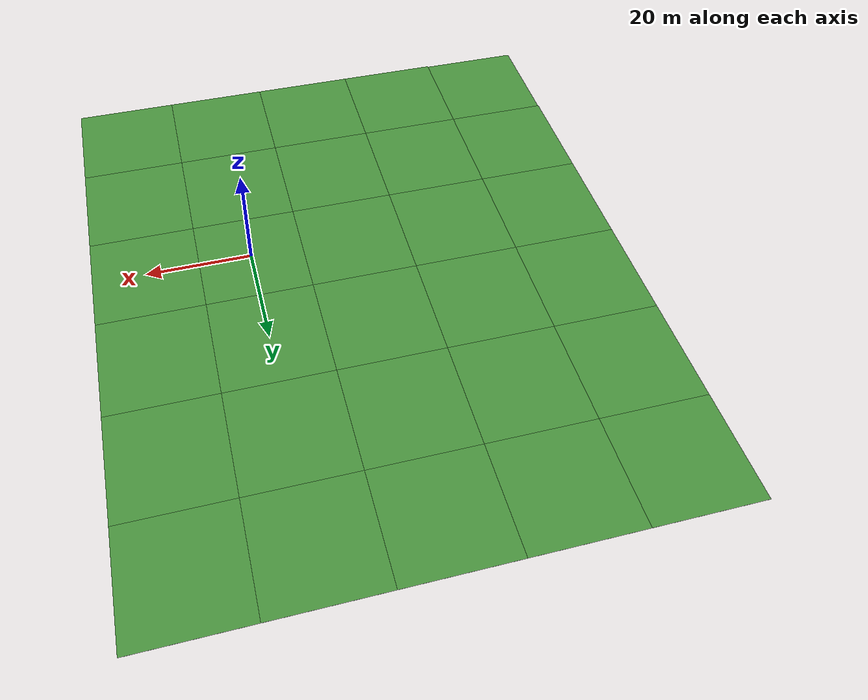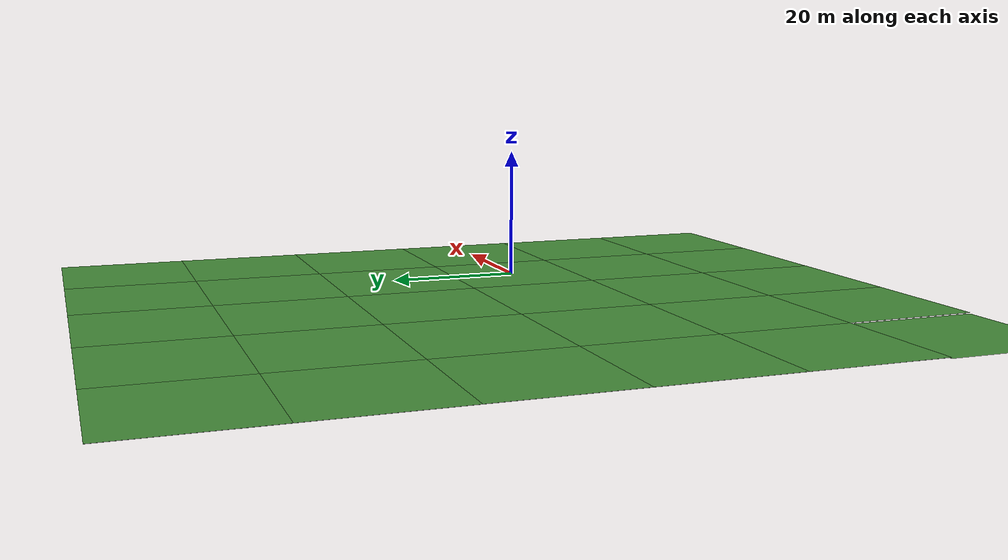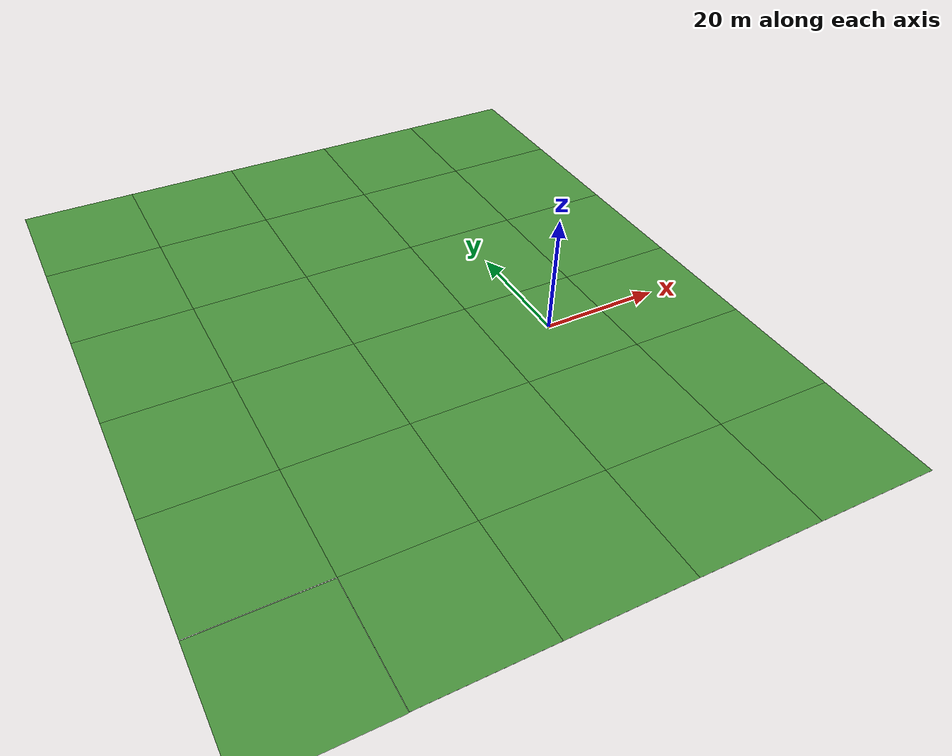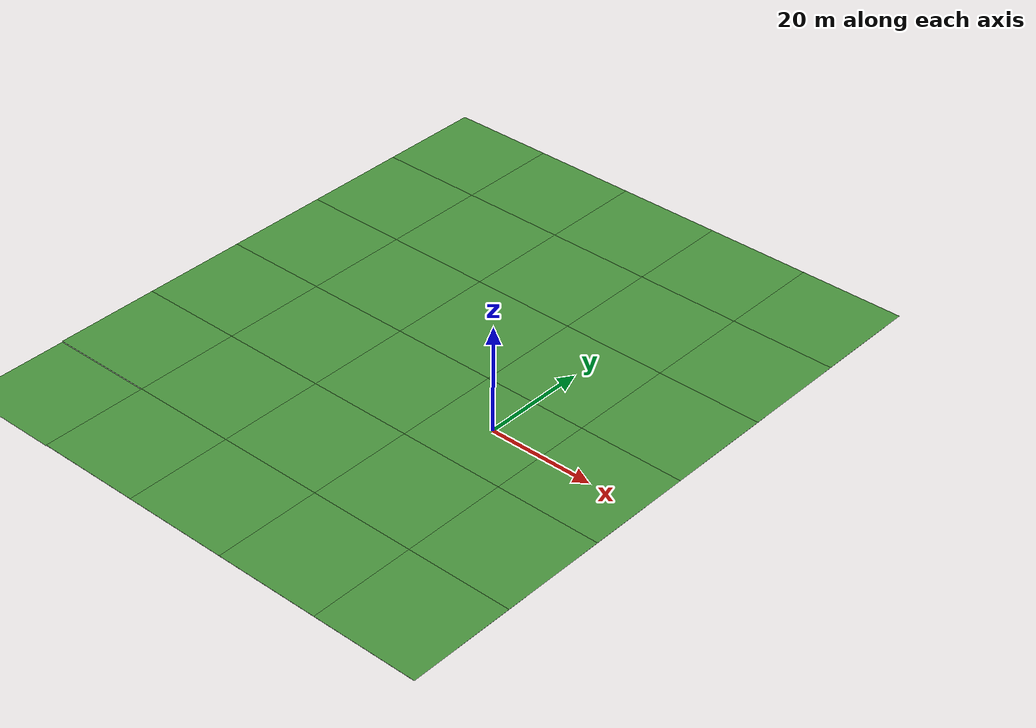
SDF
<?xml version="1.0"?>

<sdf version="1.5">
<model name="grass_plane">
  <static>true</static>
    <link name="link">
      <collision name="collision">
        <geometry>
          <plane>
            <normal>0 0 1</normal>
            <size>200 200</size>
          </plane>
        </geometry>
        <surface>
          <friction>
            <ode>
              <mu>100</mu>
              <mu2>50</mu2>
            </ode>
          </friction>
        </surface>
      </collision>

      <visual name="visual_(-3, -2)">
        <pose>-60 -40 0 0 0 0</pose>
        <cast_shadows>false</cast_shadows>
        <geometry>
          <plane>
            <normal>0 0 1</normal>
            <size>20 20</size>
          </plane>
        </geometry>
        <material>
          <script>
            <uri>model://grass_plane/materials/scripts/</uri>
            <uri>model://grass_plane/materials/textures/</uri>
            <name>grass_dry</name>
          </script>
        </material>
      </visual>

      <visual name="visual_(-3, -1)">
        <pose>-60 -20 0 0 0 0</pose>
        <cast_shadows>false</cast_shadows>
        <geometry>
          <plane>
            <normal>0 0 1</normal>
            <size>20 20</size>
          </plane>
        </geometry>
        <material>
          <script>
            <uri>model://grass_plane/materials/scripts/</uri>
            <uri>model://grass_plane/materials/textures/</uri>
            <name>grass_dry</name>
          </script>
        </material>
      </visual>

      <visual name="visual_(-3, 0)">
        <pose>-60 0 0 0 0 0</pose>
        <cast_shadows>false</cast_shadows>
        <geometry>
          <plane>
            <normal>0 0 1</normal>
            <size>20 20</size>
          </plane>
        </geometry>
        <material>
          <script>
            <uri>model://grass_plane/materials/scripts/</uri>
            <uri>model://grass_plane/materials/textures/</uri>
            <name>grass_dry</name>
          </script>
        </material>
      </visual>

      <visual name="visual_(-3, 1)">
        <pose>-60 20 0 0 0 0</pose>
        <cast_shadows>false</cast_shadows>
        <geometry>
          <plane>
            <normal>0 0 1</normal>
            <size>20 20</size>
          </plane>
        </geometry>
        <material>
          <script>
            <uri>model://grass_plane/materials/scripts/</uri>
            <uri>model://grass_plane/materials/textures/</uri>
            <name>grass_dry</name>
          </script>
        </material>
      </visual>

      <visual name="visual_(-3, 2)">
        <pose>-60 40 0 0 0 0</pose>
        <cast_shadows>false</cast_shadows>
        <geometry>
          <plane>
            <normal>0 0 1</normal>
            <size>20 20</size>
          </plane>
        </geometry>
        <material>
          <script>
            <uri>model://grass_plane/materials/scripts/</uri>
            <uri>model://grass_plane/materials/textures/</uri>
            <name>grass_dry</name>
          </script>
        </material>
      </visual>

      <visual name="visual_(-3, 3)">
        <pose>-60 60 0 0 0 0</pose>
        <cast_shadows>false</cast_shadows>
        <geometry>
          <plane>
            <normal>0 0 1</normal>
            <size>20 20</size>
          </plane>
        </geometry>
        <material>
          <script>
            <uri>model://grass_plane/materials/scripts/</uri>
            <uri>model://grass_plane/materials/textures/</uri>
            <name>grass_dry</name>
          </script>
        </material>
      </visual>

      <visual name="visual_(-2, -2)">
        <pose>-40 -40 0 0 0 0</pose>
        <cast_shadows>false</cast_shadows>
        <geometry>
          <plane>
            <normal>0 0 1</normal>
            <size>20 20</size>
          </plane>
        </geometry>
        <material>
          <script>
            <uri>model://grass_plane/materials/scripts/</uri>
            <uri>model://grass_plane/materials/textures/</uri>
            <name>grass_dry</name>
          </script>
        </material>
      </visual>

      <visual name="visual_(-2, -1)">
        <pose>-40 -20 0 0 0 0</pose>
        <cast_shadows>false</cast_shadows>
        <geometry>
          <plane>
            <normal>0 0 1</normal>
            <size>20 20</size>
          </plane>
        </geometry>
        <material>
          <script>
            <uri>model://grass_plane/materials/scripts/</uri>
            <uri>model://grass_plane/materials/textures/</uri>
            <name>grass_dry</name>
          </script>
        </material>
      </visual>

      <visual name="visual_(-2, 0)">
        <pose>-40 0 0 0 0 0</pose>
        <cast_shadows>false</cast_shadows>
        <geometry>
          <plane>
            <normal>0 0 1</normal>
            <size>20 20</size>
          </plane>
        </geometry>
        <material>
          <script>
            <uri>model://grass_plane/materials/scripts/</uri>
            <uri>model://grass_plane/materials/textures/</uri>
            <name>grass_dry</name>
          </script>
        </material>
      </visual>

      <visual name="visual_(-2, 1)">
        <pose>-40 20 0 0 0 0</pose>
        <cast_shadows>false</cast_shadows>
        <geometry>
          <plane>
            <normal>0 0 1</normal>
            <size>20 20</size>
          </plane>
        </geometry>
        <material>
          <script>
            <uri>model://grass_plane/materials/scripts/</uri>
            <uri>model://grass_plane/materials/textures/</uri>
            <name>grass_dry</name>
          </script>
        </material>
      </visual>

      <visual name="visual_(-2, 2)">
        <pose>-40 40 0 0 0 0</pose>
        <cast_shadows>false</cast_shadows>
        <geometry>
          <plane>
            <normal>0 0 1</normal>
            <size>20 20</size>
          </plane>
        </geometry>
        <material>
          <script>
            <uri>model://grass_plane/materials/scripts/</uri>
            <uri>model://grass_plane/materials/textures/</uri>
            <name>grass_dry</name>
          </script>
        </material>
      </visual>

      <visual name="visual_(-2, 3)">
        <pose>-40 60 0 0 0 0</pose>
        <cast_shadows>false</cast_shadows>
        <geometry>
          <plane>
            <normal>0 0 1</normal>
            <size>20 20</size>
          </plane>
        </geometry>
        <material>
          <script>
            <uri>model://grass_plane/materials/scripts/</uri>
            <uri>model://grass_plane/materials/textures/</uri>
            <name>grass_dry</name>
          </script>
        </material>
      </visual>

      <visual name="visual_(-1, -2)">
        <pose>-20 -40 0 0 0 0</pose>
        <cast_shadows>false</cast_shadows>
        <geometry>
          <plane>
            <normal>0 0 1</normal>
            <size>20 20</size>
          </plane>
        </geometry>
        <material>
          <script>
            <uri>model://grass_plane/materials/scripts/</uri>
            <uri>model://grass_plane/materials/textures/</uri>
            <name>grass_dry</name>
          </script>
        </material>
      </visual>

      <visual name="visual_(-1, -1)">
        <pose>-20 -20 0 0 0 0</pose>
        <cast_shadows>false</cast_shadows>
        <geometry>
          <plane>
            <normal>0 0 1</normal>
            <size>20 20</size>
          </plane>
        </geometry>
        <material>
          <script>
            <uri>model://grass_plane/materials/scripts/</uri>
            <uri>model://grass_plane/materials/textures/</uri>
            <name>grass_dry</name>
          </script>
        </material>
      </visual>

      <visual name="visual_(-1, 0)">
        <pose>-20 0 0 0 0 0</pose>
        <cast_shadows>false</cast_shadows>
        <geometry>
          <plane>
            <normal>0 0 1</normal>
            <size>20 20</size>
          </plane>
        </geometry>
        <material>
          <script>
            <uri>model://grass_plane/materials/scripts/</uri>
            <uri>model://grass_plane/materials/textures/</uri>
            <name>grass_dry</name>
          </script>
        </material>
      </visual>

      <visual name="visual_(-1, 1)">
        <pose>-20 20 0 0 0 0</pose>
        <cast_shadows>false</cast_shadows>
        <geometry>
          <plane>
            <normal>0 0 1</normal>
            <size>20 20</size>
          </plane>
        </geometry>
        <material>
          <script>
            <uri>model://grass_plane/materials/scripts/</uri>
            <uri>model://grass_plane/materials/textures/</uri>
            <name>grass_dry</name>
          </script>
        </material>
      </visual>

      <visual name="visual_(-1, 2)">
        <pose>-20 40 0 0 0 0</pose>
        <cast_shadows>false</cast_shadows>
        <geometry>
          <plane>
            <normal>0 0 1</normal>
            <size>20 20</size>
          </plane>
        </geometry>
        <material>
          <script>
            <uri>model://grass_plane/materials/scripts/</uri>
            <uri>model://grass_plane/materials/textures/</uri>
            <name>grass_dry</name>
          </script>
        </material>
      </visual>

      <visual name="visual_(-1, 3)">
        <pose>-20 60 0 0 0 0</pose>
        <cast_shadows>false</cast_shadows>
        <geometry>
          <plane>
            <normal>0 0 1</normal>
            <size>20 20</size>
          </plane>
        </geometry>
        <material>
          <script>
            <uri>model://grass_plane/materials/scripts/</uri>
            <uri>model://grass_plane/materials/textures/</uri>
            <name>grass_dry</name>
          </script>
        </material>
      </visual>

      <visual name="visual_(0, -2)">
        <pose>0 -40 0 0 0 0</pose>
        <cast_shadows>false</cast_shadows>
        <geometry>
          <plane>
            <normal>0 0 1</normal>
            <size>20 20</size>
          </plane>
        </geometry>
        <material>
          <script>
            <uri>model://grass_plane/materials/scripts/</uri>
            <uri>model://grass_plane/materials/textures/</uri>
            <name>grass_dry</name>
          </script>
        </material>
      </visual>

      <visual name="visual_(0, -1)">
        <pose>0 -20 0 0 0 0</pose>
        <cast_shadows>false</cast_shadows>
        <geometry>
          <plane>
            <normal>0 0 1</normal>
            <size>20 20</size>
          </plane>
        </geometry>
        <material>
          <script>
            <uri>model://grass_plane/materials/scripts/</uri>
            <uri>model://grass_plane/materials/textures/</uri>
            <name>grass_dry</name>
          </script>
        </material>
      </visual>

      <visual name="visual_(0, 0)">
        <pose>0 0 0 0 0 0</pose>
        <cast_shadows>false</cast_shadows>
        <geometry>
          <plane>
            <normal>0 0 1</normal>
            <size>20 20</size>
          </plane>
        </geometry>
        <material>
          <script>
            <uri>model://grass_plane/materials/scripts/</uri>
            <uri>model://grass_plane/materials/textures/</uri>
            <name>grass_dry</name>
          </script>
        </material>
      </visual>

      <visual name="visual_(0, 1)">
        <pose>0 20 0 0 0 0</pose>
        <cast_shadows>false</cast_shadows>
        <geometry>
          <plane>
            <normal>0 0 1</normal>
            <size>20 20</size>
          </plane>
        </geometry>
        <material>
          <script>
            <uri>model://grass_plane/materials/scripts/</uri>
            <uri>model://grass_plane/materials/textures/</uri>
            <name>grass_dry</name>
          </script>
        </material>
      </visual>

      <visual name="visual_(0, 2)">
        <pose>0 40 0 0 0 0</pose>
        <cast_shadows>false</cast_shadows>
        <geometry>
          <plane>
            <normal>0 0 1</normal>
            <size>20 20</size>
          </plane>
        </geometry>
        <material>
          <script>
            <uri>model://grass_plane/materials/scripts/</uri>
            <uri>model://grass_plane/materials/textures/</uri>
            <name>grass_dry</name>
          </script>
        </material>
      </visual>

      <visual name="visual_(0, 3)">
        <pose>0 60 0 0 0 0</pose>
        <cast_shadows>false</cast_shadows>
        <geometry>
          <plane>
            <normal>0 0 1</normal>
            <size>20 20</size>
          </plane>
        </geometry>
        <material>
          <script>
            <uri>model://grass_plane/materials/scripts/</uri>
            <uri>model://grass_plane/materials/textures/</uri>
            <name>grass_dry</name>
          </script>
        </material>
      </visual>

      <visual name="visual_(1, -2)">
        <pose>20 -40 0 0 0 0</pose>
        <cast_shadows>false</cast_shadows>
        <geometry>
          <plane>
            <normal>0 0 1</normal>
            <size>20 20</size>
          </plane>
        </geometry>
        <material>
          <script>
            <uri>model://grass_plane/materials/scripts/</uri>
            <uri>model://grass_plane/materials/textures/</uri>
            <name>grass_dry</name>
          </script>
        </material>
      </visual>

      <visual name="visual_(1, -1)">
        <pose>20 -20 0 0 0 0</pose>
        <cast_shadows>false</cast_shadows>
        <geometry>
          <plane>
            <normal>0 0 1</normal>
            <size>20 20</size>
          </plane>
        </geometry>
        <material>
          <script>
            <uri>model://grass_plane/materials/scripts/</uri>
            <uri>model://grass_plane/materials/textures/</uri>
            <name>grass_dry</name>
          </script>
        </material>
      </visual>

      <visual name="visual_(1, 0)">
        <pose>20 0 0 0 0 0</pose>
        <cast_shadows>false</cast_shadows>
        <geometry>
          <plane>
            <normal>0 0 1</normal>
            <size>20 20</size>
          </plane>
        </geometry>
        <material>
          <script>
            <uri>model://grass_plane/materials/scripts/</uri>
            <uri>model://grass_plane/materials/textures/</uri>
            <name>grass_dry</name>
          </script>
        </material>
      </visual>

      <visual name="visual_(1, 1)">
        <pose>20 20 0 0 0 0</pose>
        <cast_shadows>false</cast_shadows>
        <geometry>
          <plane>
            <normal>0 0 1</normal>
            <size>20 20</size>
          </plane>
        </geometry>
        <material>
          <script>
            <uri>model://grass_plane/materials/scripts/</uri>
            <uri>model://grass_plane/materials/textures/</uri>
            <name>grass_dry</name>
          </script>
        </material>
      </visual>

      <visual name="visual_(1, 2)">
        <pose>20 40 0 0 0 0</pose>
        <cast_shadows>false</cast_shadows>
        <geometry>
          <plane>
            <normal>0 0 1</normal>
            <size>20 20</size>
          </plane>
        </geometry>
        <material>
          <script>
            <uri>model://grass_plane/materials/scripts/</uri>
            <uri>model://grass_plane/materials/textures/</uri>
            <name>grass_dry</name>
          </script>
        </material>
      </visual>

      <visual name="visual_(1, 3)">
        <pose>20 60 0 0 0 0</pose>
        <cast_shadows>false</cast_shadows>
        <geometry>
          <plane>
            <normal>0 0 1</normal>
            <size>20 20</size>
          </plane>
        </geometry>
        <material>
          <script>
            <uri>model://grass_plane/materials/scripts/</uri>
            <uri>model://grass_plane/materials/textures/</uri>
            <name>grass_dry</name>
          </script>
        </material>
      </visual>

    </link>
  </model>
</sdf>
